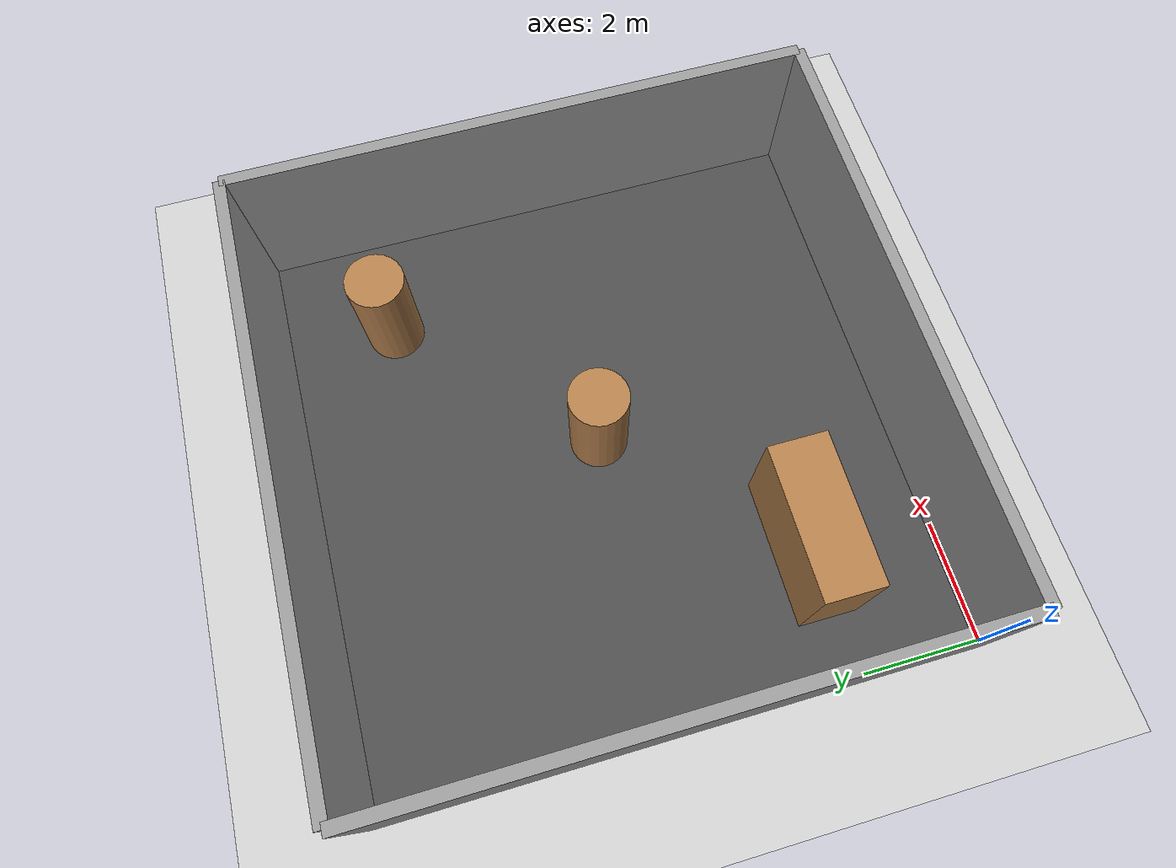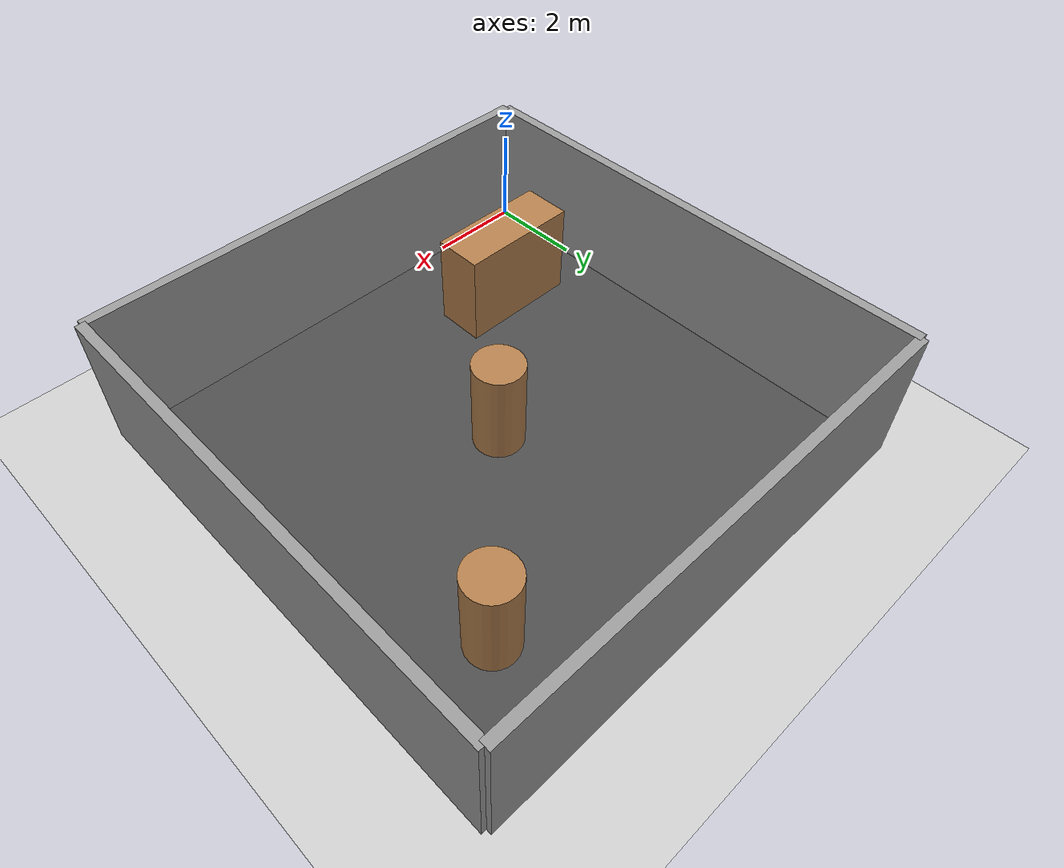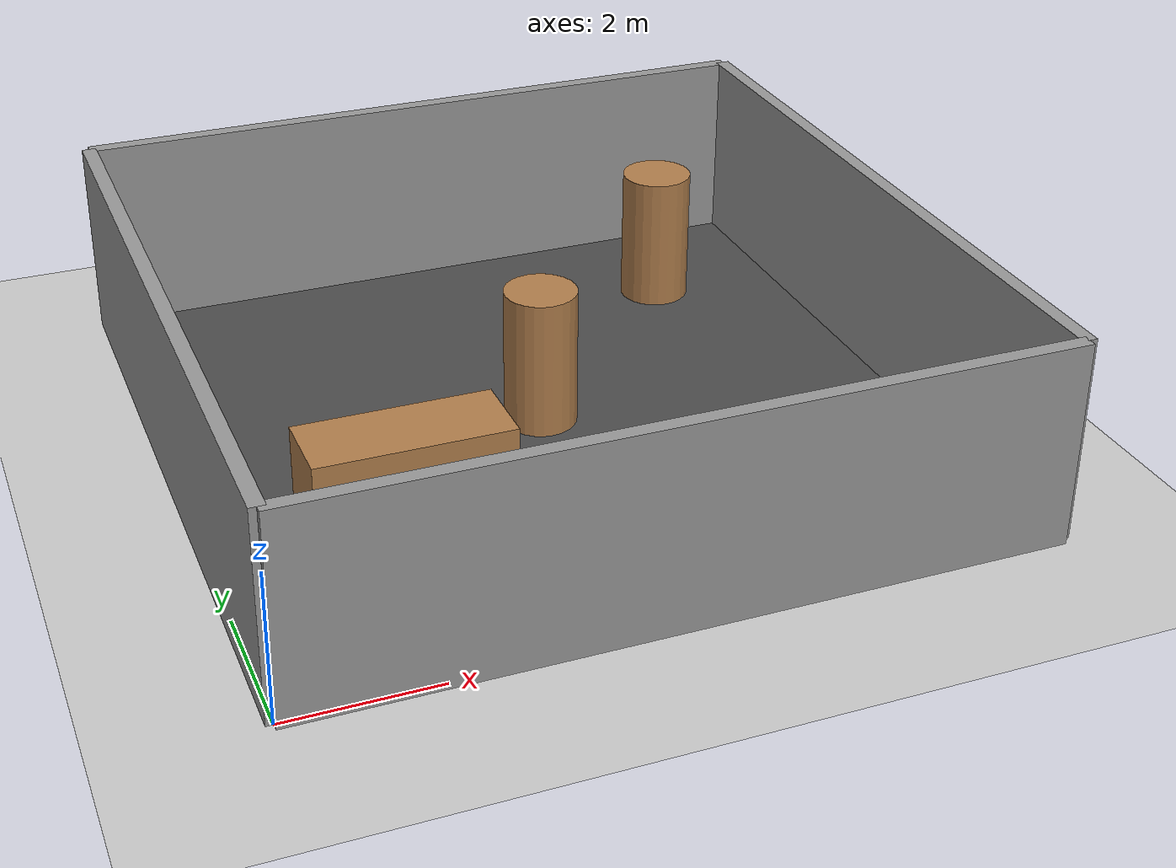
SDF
<sdf version="1.4">
 <world name="default">
  <scene><shadows>0</shadows></scene>
  <physics type="ode">
   <gravity>0 0 -9.81</gravity>
   <ode>
    <solver><type>quick</type><iters>20</iters><sor>1.0</sor></solver>
    <constraints>
     <cfm>0.0</cfm>
     <erp>0.2</erp>
     <contact_max_correcting_vel>100.0</contact_max_correcting_vel>
     <contact_surface_layer>0.0</contact_surface_layer>
    </constraints>
   </ode>
   <real_time_update_rate>1000</real_time_update_rate>
   <max_step_size>0.001</max_step_size>
  </physics>
  <include><uri>model://sun</uri></include>
  <include><uri>model://ground_plane</uri></include>
  <include><uri>model://floor</uri><name>floor</name><pose>5 5 0 0 0 0</pose></include>
  <include><uri>model://w1</uri><name>w1_bottom</name><pose>0 5 0.0 0 0.0 -1.57</pose></include>
  <include><uri>model://w1</uri><name>w1_left</name><pose>5 10 0.0 0 0.0 0.0</pose></include>
  <include><uri>model://w1</uri><name>w1_top</name><pose>10 5.0 0.0 0 0.0 -1.57</pose></include>
  <include><uri>model://w1</uri><name>w1_right</name><pose>5 0 0.0 0 0.0 0.0</pose></include>
  <include><uri>model://w2</uri><name>box_obstacle</name><pose>2.25 2.25 0 0.0 0.0 0.0</pose></include>
  <include><uri>model://w3</uri><name>cilynder1_obstacle</name><pose>8 8 0 0.0 0.0 0.0</pose></include>
  <include><uri>model://w3</uri><name>cilynder2_obstacle</name><pose>5 5 0 0.0 0.0 0.0</pose></include>
 </world>
</sdf>

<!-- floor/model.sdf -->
<sdf version="1.5">
  <model name="asphalt_plane">
    <static>true</static>
    <link name="link">
      <collision name="collision">
        <geometry>
          <box>
            <size>10 10 .1</size>
          </box>
        </geometry>
      </collision>
      <visual name="visual">
        <cast_shadows>false</cast_shadows>
        <geometry>
          <box>
            <size>10 10 .1</size>
          </box>
        </geometry>
        <material>
          <script>
            <uri>model://floor/materials/scripts</uri>
            <uri>model://floor/materials/textures</uri>
            <name>vrc/asphalt</name>
          </script>
        </material>
      </visual>
    </link>
  </model>
</sdf>

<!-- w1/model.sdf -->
<sdf version="1.5">
  <model name="grey_wall">
    <static>true</static>
    <link name="link">
      <pose>0 0 1.4 0 0 0</pose>
      <collision name="collision">
        <geometry>
          <box>
            <size>10 0.2 2.8</size>
          </box>
        </geometry>
      </collision>
      <visual name="visual">
        <cast_shadows>false</cast_shadows>
        <geometry>
          <box>
            <size>10 0.2 2.8</size>
          </box>
        </geometry>
        <material>
          <script>
            <uri>model://w1/materials/scripts</uri>
            <uri>model://w1/materials/textures</uri>
            <name>vrc/grey_wall</name>
          </script>
        </material>
      </visual>
    </link>
  </model>
</sdf>

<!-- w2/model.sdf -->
<sdf version="1.5">
  <model name="grey_wall">
    <static>true</static>
    <link name="link">
      <pose>0 0 1 0 0 0</pose>
      <collision name="collision">
        <geometry>
          <box>
            <size>2.5 1 2</size>
          </box>
        </geometry>
      </collision>
      <visual name="visual">
        <cast_shadows>false</cast_shadows>
        <geometry>
          <box>
            <size>2.5 1 2</size>
          </box>
        </geometry>
        <material>
          <script>
            <uri>model://w2/materials/scripts</uri>
            <uri>model://w2/materials/textures</uri>
            <name>vrc/wood</name>
          </script>
        </material>
      </visual>
    </link>
  </model>
</sdf>

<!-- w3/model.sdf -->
<sdf version="1.5">
  <model name="grey_wall">
    <static>true</static>
    <link name="link">
      <pose>0 0 1 0 0 0</pose>
      <collision name="collision">
        <geometry>
          <cylinder>
            <radius>0.5</radius>
            <length>2</length>
          </cylinder>
        </geometry>
      </collision>
      <visual name="visual">
        <cast_shadows>false</cast_shadows>
        <geometry>
          <cylinder>
            <radius>0.5</radius>
            <length>2</length>
          </cylinder>
        </geometry>
        <material>
          <script>
            <uri>model://w3/materials/scripts</uri>
            <uri>model://w3/materials/textures</uri>
            <name>vrc/wood</name>
          </script>
        </material>
      </visual>
    </link>
  </model>
</sdf>
